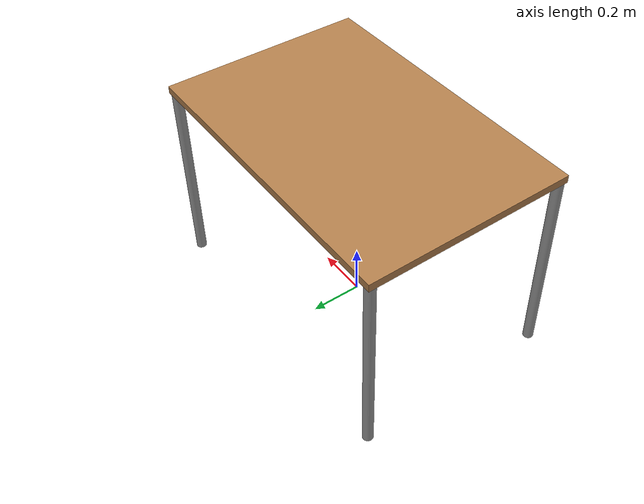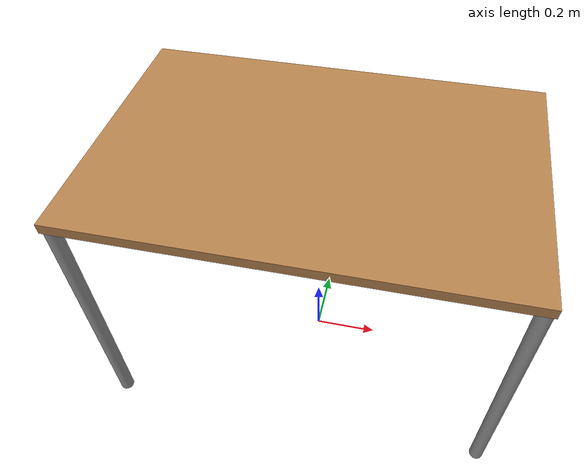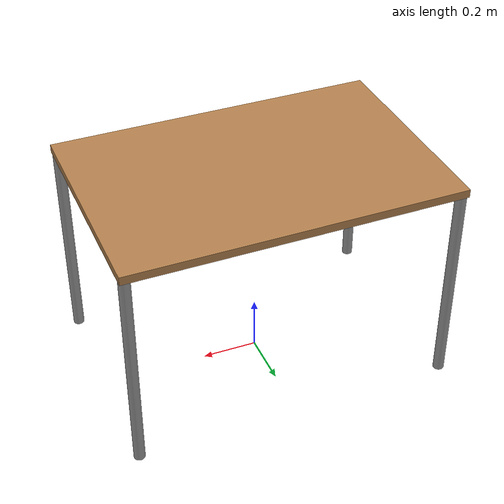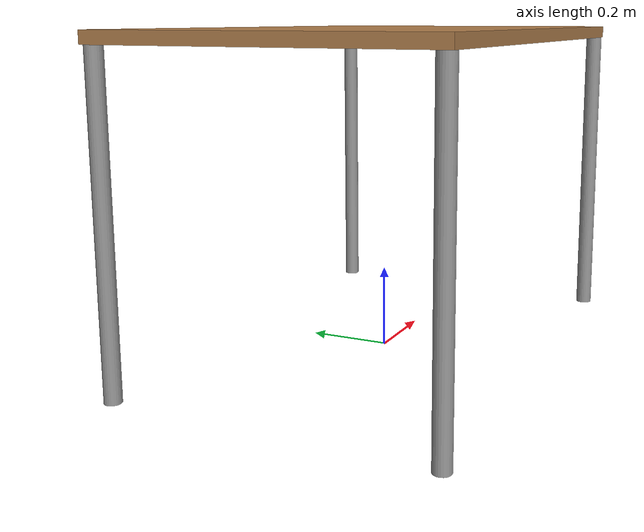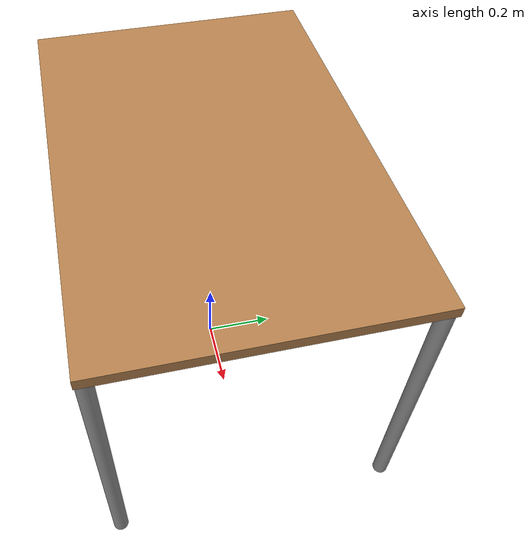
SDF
<sdf version="1.5">
  <model name="Table">
    <static>true</static>
    <link name="link">
      <collision name="surface">
        <pose>0 0 0.78 0 0 0</pose>
        <geometry>
          <box>
            <size>1.2 0.8 0.03</size>
          </box>
        </geometry>
        <surface>
          <friction>
            <ode>
              <mu>0.6</mu>
              <mu2>0.6</mu2>
            </ode>
          </friction>
        </surface>
      </collision>
      <visual name="visual1">
        <pose>0 0 0.78 0 0 0</pose>
        <geometry>
          <box>
            <size>1.2 0.8 0.03</size>
          </box>
        </geometry>
        <material>
          <diffuse>1.0 1.0 1.0</diffuse>
          <script>
            <uri>file://media/materials/scripts/gazebo.material</uri>
            <name>Gazebo/Wood</name>
          </script>
          <!-- PBR for Ignition, material scripts for gazebo classic-->
          <pbr>
            <metal>
              <albedo_map>model://Table/Table_Diffuse.jpg</albedo_map>
            </metal>
          </pbr>
        </material>
      </visual>
      <collision name="front_left_leg">
        <pose>0.58 0.38 0.39 0 0 0</pose>
        <geometry>
          <cylinder>
            <radius>0.02</radius>
            <length>0.78</length>
          </cylinder>
        </geometry>
      </collision>
      <visual name="front_left_leg">
        <pose>0.58 0.38 0.39 0 0 0</pose>
        <geometry>
          <cylinder>
            <radius>0.02</radius>
            <length>0.78</length>
          </cylinder>
        </geometry>
        <material>
          <diffuse>0.5 0.5 0.5</diffuse>
          <script>
            <uri>file://media/materials/scripts/gazebo.material</uri>
            <name>Gazebo/Grey</name>
          </script>
        </material>
      </visual>
      <collision name="front_right_leg">
        <pose>0.58 -0.38 0.39 0 0 0</pose>
        <geometry>
          <cylinder>
            <radius>0.02</radius>
            <length>0.78</length>
          </cylinder>
        </geometry>
      </collision>
      <visual name="front_right_leg">
        <pose>0.58 -0.38 0.39 0 0 0</pose>
        <geometry>
          <cylinder>
            <radius>0.02</radius>
            <length>0.78</length>
          </cylinder>
        </geometry>
        <material>
          <diffuse>0.5 0.5 0.5</diffuse>
          <script>
            <uri>file://media/materials/scripts/gazebo.material</uri>
            <name>Gazebo/Grey</name>
          </script>
        </material>
      </visual>
      <collision name="back_right_leg">
        <pose>-0.58 -0.38 0.39 0 0 0</pose>
        <geometry>
          <cylinder>
            <radius>0.02</radius>
            <length>0.78</length>
          </cylinder>
        </geometry>
      </collision>
      <visual name="back_right_leg">
        <pose>-0.58 -0.38 0.39 0 0 0</pose>
        <geometry>
          <cylinder>
            <radius>0.02</radius>
            <length>0.78</length>
          </cylinder>
        </geometry>
        <material>
          <diffuse>0.5 0.5 0.5</diffuse>
          <script>
            <uri>file://media/materials/scripts/gazebo.material</uri>
            <name>Gazebo/Grey</name>
          </script>
        </material>
      </visual>
      <collision name="back_left_leg">
        <pose>-0.58 0.38 0.39 0 0 0</pose>
        <geometry>
          <cylinder>
            <radius>0.02</radius>
            <length>0.78</length>
          </cylinder>
        </geometry>
      </collision>
      <visual name="back_left_leg">
        <pose>-0.58 0.38 0.39 0 0 0</pose>
        <geometry>
          <cylinder>
            <radius>0.02</radius>
            <length>0.78</length>
          </cylinder>
        </geometry>
        <material>
          <diffuse>0.5 0.5 0.5</diffuse>
          <script>
            <uri>file://media/materials/scripts/gazebo.material</uri>
            <name>Gazebo/Grey</name>
          </script>
        </material>
      </visual>
    </link>
  </model>
</sdf>
